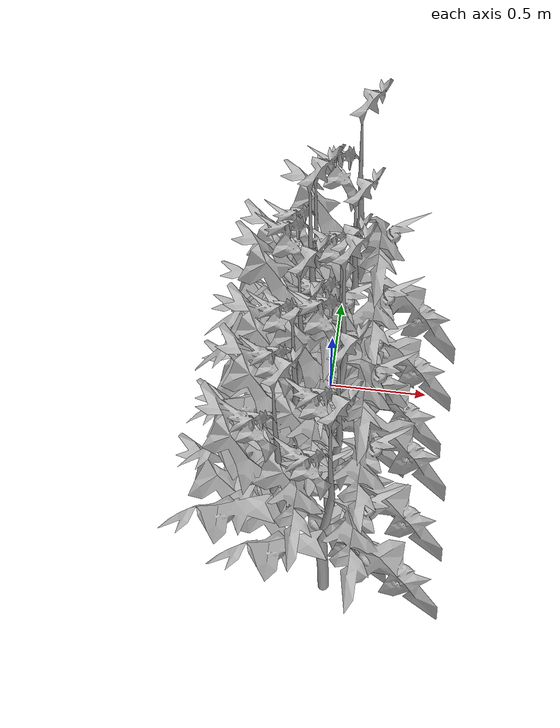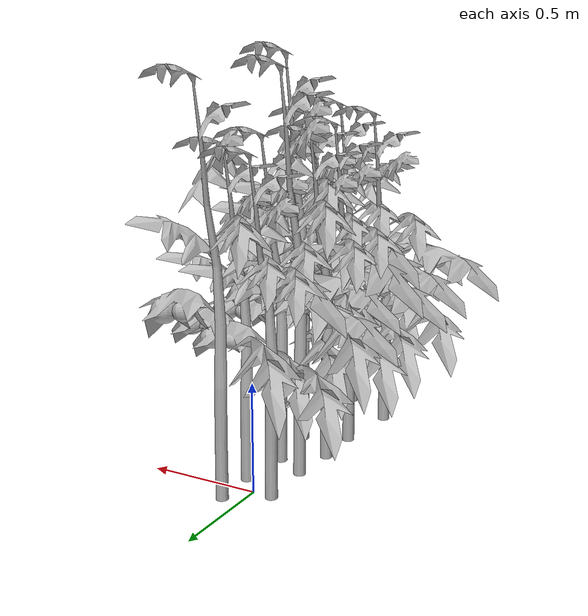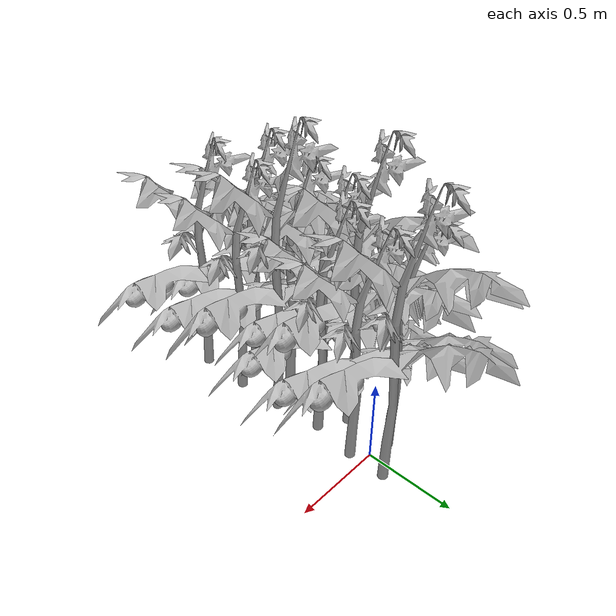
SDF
<?xml version='1.0'?>
<sdf version='1.6'>
  <model name='Front_Plant_1'>
    <model name='tomato_plant_medium'>
      <static>1</static>
      <link name='link'>
        <collision name='collision'>
          <pose frame=''>0 0 0 1.5708 -0 0</pose>
          <geometry>
            <mesh>
              <scale>0.5 0.5 0.5</scale>
              <uri>model://stick/meshes/stick.dae</uri>
            </mesh>
          </geometry>
          <max_contacts>10</max_contacts>
          <surface>
            <contact>
              <ode/>
            </contact>
            <bounce/>
            <friction>
              <torsional>
                <ode/>
              </torsional>
              <ode/>
            </friction>
          </surface>
        </collision>
        <visual name='visual'>
          <pose frame=''>0 0 0 0 -0 0</pose>
          <geometry>
            <mesh>
              <scale>5e-06 5e-06 6e-06</scale>
              <uri>model://tomato_plant_medium/meshes/tomato-plant.dae</uri>
            </mesh>
          </geometry>
        </visual>
        <self_collide>0</self_collide>
        <enable_wind>0</enable_wind>
        <kinematic>0</kinematic>
      </link>
      <pose frame=''>0.087453 -0.595994 0.012396 0 -0 0</pose>
    </model>
    <model name='tomato_plant_medium_0'>
      <static>1</static>
      <link name='link'>
        <collision name='collision'>
          <pose frame=''>0 0 0 1.5708 -0 0</pose>
          <geometry>
            <mesh>
              <scale>0.5 0.5 0.5</scale>
              <uri>model://stick/meshes/stick.dae</uri>
            </mesh>
          </geometry>
          <max_contacts>10</max_contacts>
          <surface>
            <contact>
              <ode/>
            </contact>
            <bounce/>
            <friction>
              <torsional>
                <ode/>
              </torsional>
              <ode/>
            </friction>
          </surface>
        </collision>
        <visual name='visual'>
          <pose frame=''>0 0 0 0 -0 0</pose>
          <geometry>
            <mesh>
              <scale>5e-06 5e-06 6e-06</scale>
              <uri>model://tomato_plant_medium/meshes/tomato-plant.dae</uri>
            </mesh>
          </geometry>
        </visual>
        <self_collide>0</self_collide>
        <enable_wind>0</enable_wind>
        <kinematic>0</kinematic>
      </link>
      <pose frame=''>-0.086166 -0.251822 0.012396 0 -0 0</pose>
    </model>
    <model name='tomato_plant_medium_1'>
      <static>1</static>
      <link name='link'>
        <collision name='collision'>
          <pose frame=''>0 0 0 1.5708 -0 0</pose>
          <geometry>
            <mesh>
              <scale>0.5 0.5 0.5</scale>
              <uri>model://stick/meshes/stick.dae</uri>
            </mesh>
          </geometry>
          <max_contacts>10</max_contacts>
          <surface>
            <contact>
              <ode/>
            </contact>
            <bounce/>
            <friction>
              <torsional>
                <ode/>
              </torsional>
              <ode/>
            </friction>
          </surface>
        </collision>
        <visual name='visual'>
          <pose frame=''>0 0 0 0 -0 0</pose>
          <geometry>
            <mesh>
              <scale>5e-06 5e-06 6e-06</scale>
              <uri>model://tomato_plant_medium/meshes/tomato-plant.dae</uri>
            </mesh>
          </geometry>
        </visual>
        <self_collide>0</self_collide>
        <enable_wind>0</enable_wind>
        <kinematic>0</kinematic>
      </link>
      <pose frame=''>0.080199 0.118127 0.012396 0 -0 0</pose>
    </model>
    <model name='tomato_plant_small'>
      <static>1</static>
      <link name='link'>
        <collision name='collision'>
          <pose frame=''>0 0 0 1.5708 -0 0</pose>
          <geometry>
            <mesh>
              <scale>0.5 0.45 0.5</scale>
              <uri>model://stick/meshes/stick.dae</uri>
            </mesh>
          </geometry>
          <max_contacts>10</max_contacts>
          <surface>
            <contact>
              <ode/>
            </contact>
            <bounce/>
            <friction>
              <torsional>
                <ode/>
              </torsional>
              <ode/>
            </friction>
          </surface>
        </collision>
        <visual name='visual'>
          <pose frame=''>0 0 0 0 -0 0</pose>
          <geometry>
            <mesh>
              <scale>5e-06 5e-06 5e-06</scale>
              <uri>model://tomato_plant_small/meshes/tomato-plant.dae</uri>
            </mesh>
          </geometry>
        </visual>
        <self_collide>0</self_collide>
        <enable_wind>0</enable_wind>
        <kinematic>0</kinematic>
      </link>
      <pose frame=''>0.099683 -1.12011 0.012396 0 -0 0</pose>
    </model>
    <model name='tomato_plant_small_0'>
      <static>1</static>
      <link name='link'>
        <collision name='collision'>
          <pose frame=''>0 0 0 1.5708 -0 0</pose>
          <geometry>
            <mesh>
              <scale>0.5 0.45 0.5</scale>
              <uri>model://stick/meshes/stick.dae</uri>
            </mesh>
          </geometry>
          <max_contacts>10</max_contacts>
          <surface>
            <contact>
              <ode/>
            </contact>
            <bounce/>
            <friction>
              <torsional>
                <ode/>
              </torsional>
              <ode/>
            </friction>
          </surface>
        </collision>
        <visual name='visual'>
          <pose frame=''>0 0 0 0 -0 0</pose>
          <geometry>
            <mesh>
              <scale>5e-06 5e-06 5e-06</scale>
              <uri>model://tomato_plant_small/meshes/tomato-plant.dae</uri>
            </mesh>
          </geometry>
        </visual>
        <self_collide>0</self_collide>
        <enable_wind>0</enable_wind>
        <kinematic>0</kinematic>
      </link>
      <pose frame=''>-0.138771 -0.983982 0.012396 0 -0 0</pose>
    </model>
    <model name='tomato_plant_small_1'>
      <static>1</static>
      <link name='link'>
        <collision name='collision'>
          <pose frame=''>0 0 0 1.5708 -0 0</pose>
          <geometry>
            <mesh>
              <scale>0.5 0.45 0.5</scale>
              <uri>model://stick/meshes/stick.dae</uri>
            </mesh>
          </geometry>
          <max_contacts>10</max_contacts>
          <surface>
            <contact>
              <ode/>
            </contact>
            <bounce/>
            <friction>
              <torsional>
                <ode/>
              </torsional>
              <ode/>
            </friction>
          </surface>
        </collision>
        <visual name='visual'>
          <pose frame=''>0 0 0 0 -0 0</pose>
          <geometry>
            <mesh>
              <scale>5e-06 5e-06 5e-06</scale>
              <uri>model://tomato_plant_small/meshes/tomato-plant.dae</uri>
            </mesh>
          </geometry>
        </visual>
        <self_collide>0</self_collide>
        <enable_wind>0</enable_wind>
        <kinematic>0</kinematic>
      </link>
      <pose frame=''>0.101334 -0.848814 0.012396 0 -0 0</pose>
    </model>
    <model name='tomato_plant_small_2'>
      <static>1</static>
      <link name='link'>
        <collision name='collision'>
          <pose frame=''>0 0 0 1.5708 -0 0</pose>
          <geometry>
            <mesh>
              <scale>0.5 0.45 0.5</scale>
              <uri>model://stick/meshes/stick.dae</uri>
            </mesh>
          </geometry>
          <max_contacts>10</max_contacts>
          <surface>
            <contact>
              <ode/>
            </contact>
            <bounce/>
            <friction>
              <torsional>
                <ode/>
              </torsional>
              <ode/>
            </friction>
          </surface>
        </collision>
        <visual name='visual'>
          <pose frame=''>0 0 0 0 -0 0</pose>
          <geometry>
            <mesh>
              <scale>5e-06 5e-06 5e-06</scale>
              <uri>model://tomato_plant_small/meshes/tomato-plant.dae</uri>
            </mesh>
          </geometry>
        </visual>
        <self_collide>0</self_collide>
        <enable_wind>0</enable_wind>
        <kinematic>0</kinematic>
      </link>
      <pose frame=''>-0.103369 -0.683189 0.012396 0 -0 0</pose>
    </model>
    <model name='tomato_plant_small_3'>
      <static>1</static>
      <link name='link'>
        <collision name='collision'>
          <pose frame=''>0 0 0 1.5708 -0 0</pose>
          <geometry>
            <mesh>
              <scale>0.5 0.45 0.5</scale>
              <uri>model://stick/meshes/stick.dae</uri>
            </mesh>
          </geometry>
          <max_contacts>10</max_contacts>
          <surface>
            <contact>
              <ode/>
            </contact>
            <bounce/>
            <friction>
              <torsional>
                <ode/>
              </torsional>
              <ode/>
            </friction>
          </surface>
        </collision>
        <visual name='visual'>
          <pose frame=''>0 0 0 0 -0 0</pose>
          <geometry>
            <mesh>
              <scale>5e-06 5e-06 5e-06</scale>
              <uri>model://tomato_plant_small/meshes/tomato-plant.dae</uri>
            </mesh>
          </geometry>
        </visual>
        <self_collide>0</self_collide>
        <enable_wind>0</enable_wind>
        <kinematic>0</kinematic>
      </link>
      <pose frame=''>-0.104381 -0.464811 0.012396 0 -0 0</pose>
    </model>
    <model name='tomato_plant_small_4'>
      <static>1</static>
      <link name='link'>
        <collision name='collision'>
          <pose frame=''>0 0 0 1.5708 -0 0</pose>
          <geometry>
            <mesh>
              <scale>0.5 0.45 0.5</scale>
              <uri>model://stick/meshes/stick.dae</uri>
            </mesh>
          </geometry>
          <max_contacts>10</max_contacts>
          <surface>
            <contact>
              <ode/>
            </contact>
            <bounce/>
            <friction>
              <torsional>
                <ode/>
              </torsional>
              <ode/>
            </friction>
          </surface>
        </collision>
        <visual name='visual'>
          <pose frame=''>0 0 0 0 -0 0</pose>
          <geometry>
            <mesh>
              <scale>5e-06 5e-06 5e-06</scale>
              <uri>model://tomato_plant_small/meshes/tomato-plant.dae</uri>
            </mesh>
          </geometry>
        </visual>
        <self_collide>0</self_collide>
        <enable_wind>0</enable_wind>
        <kinematic>0</kinematic>
      </link>
      <pose frame=''>0.055604 -0.336879 0.012396 0 -0 0</pose>
    </model>
    <model name='tomato_plant_small_5'>
      <static>1</static>
      <link name='link'>
        <collision name='collision'>
          <pose frame=''>0 0 0 1.5708 -0 0</pose>
          <geometry>
            <mesh>
              <scale>0.5 0.45 0.5</scale>
              <uri>model://stick/meshes/stick.dae</uri>
            </mesh>
          </geometry>
          <max_contacts>10</max_contacts>
          <surface>
            <contact>
              <ode/>
            </contact>
            <bounce/>
            <friction>
              <torsional>
                <ode/>
              </torsional>
              <ode/>
            </friction>
          </surface>
        </collision>
        <visual name='visual'>
          <pose frame=''>0 0 0 0 -0 0</pose>
          <geometry>
            <mesh>
              <scale>5e-06 5e-06 5e-06</scale>
              <uri>model://tomato_plant_small/meshes/tomato-plant.dae</uri>
            </mesh>
          </geometry>
        </visual>
        <self_collide>0</self_collide>
        <enable_wind>0</enable_wind>
        <kinematic>0</kinematic>
      </link>
      <pose frame=''>0.085059 -0.092572 0.012396 0 -0 0</pose>
    </model>
    <model name='tomato_plant_small_6'>
      <static>1</static>
      <link name='link'>
        <collision name='collision'>
          <pose frame=''>0 0 0 1.5708 -0 0</pose>
          <geometry>
            <mesh>
              <scale>0.5 0.45 0.5</scale>
              <uri>model://stick/meshes/stick.dae</uri>
            </mesh>
          </geometry>
          <max_contacts>10</max_contacts>
          <surface>
            <contact>
              <ode/>
            </contact>
            <bounce/>
            <friction>
              <torsional>
                <ode/>
              </torsional>
              <ode/>
            </friction>
          </surface>
        </collision>
        <visual name='visual'>
          <pose frame=''>0 0 0 0 -0 0</pose>
          <geometry>
            <mesh>
              <scale>5e-06 5e-06 5e-06</scale>
              <uri>model://tomato_plant_small/meshes/tomato-plant.dae</uri>
            </mesh>
          </geometry>
        </visual>
        <self_collide>0</self_collide>
        <enable_wind>0</enable_wind>
        <kinematic>0</kinematic>
      </link>
      <pose frame=''>-0.096345 0.008888 0.012396 0 -0 0</pose>
    </model>
    <static>0</static>
    <allow_auto_disable>1</allow_auto_disable>
  </model>
</sdf>
